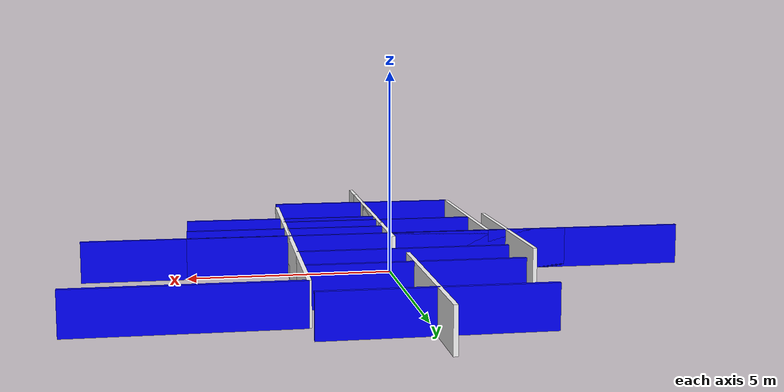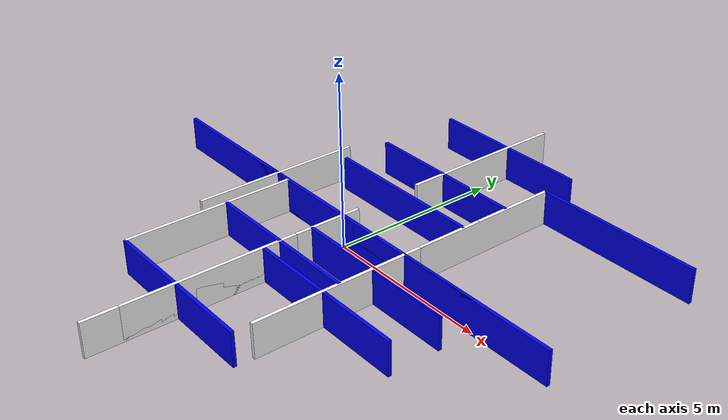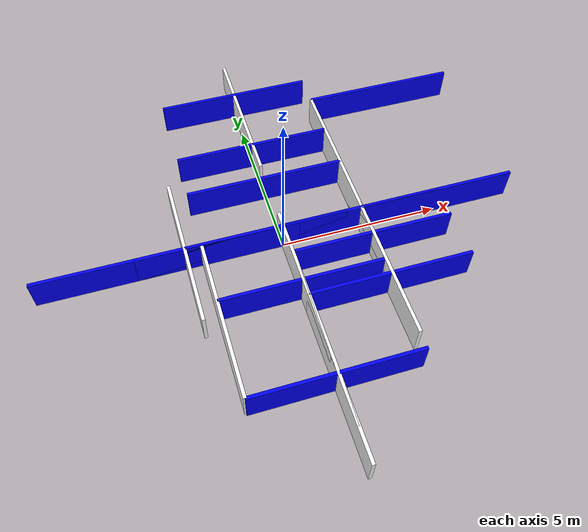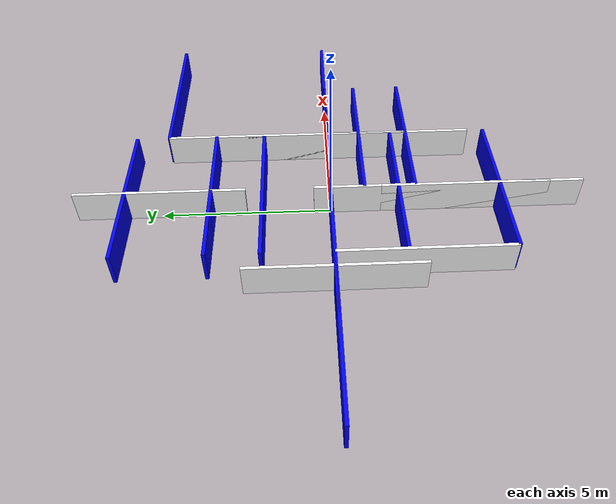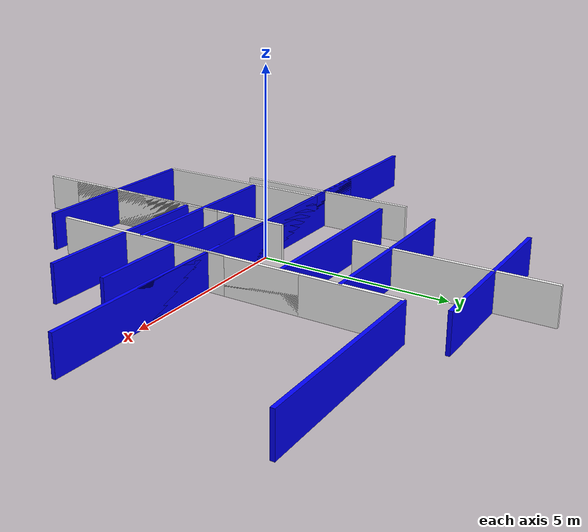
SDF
<?xml version="1.0" ?>
<sdf version="1.8">
    <model name='maze'>
      <include>
        <uri>model://wall_2x5m</uri>
        <pose>2.5 -1 0 0 0 0</pose>
        <name>a1</name>
      </include>

      <include>
        <uri>model://ar_tags/tag_01</uri>
        <pose relative_to="a1">2.5 2.5 0 0 0 0</pose>
        <name>tag_01</name>
      </include>

      <include>
        <uri>model://wall_2x5m_</uri>
        <pose relative_to="a1">2.5 2.5 0 0 0 0</pose>
        <name>a2</name>
      </include>

      <include>
        <uri>model://wall_2x5m_</uri>
        <pose relative_to="a1">-2.5 -2.5 0 0 0 0</pose>
        <name>a3</name>
      </include>

      <include>
        <uri>model://wall_2x5m_</uri>
        <pose relative_to="a2">0 -4 0 0 0 0</pose>
        <name>a4</name>
      </include>

      <include>
        <uri>model://wall_2x5m</uri>
        <pose relative_to="a1">0 -5 0 0 0 0</pose>
        <name>a5</name>
      </include>

      <include>
        <uri>model://wall_2x5m</uri>
        <pose relative_to="a5">2.5 0 0 0 0 0</pose>
        <name>a6</name>
      </include>

      <include>
        <uri>model://wall_2x5m</uri>
        <pose relative_to="a6">0 -2 0 0 0 0</pose>
        <name>a7</name>
      </include>

      <include>
        <uri>model://wall_2x5m</uri>
        <pose relative_to="a7">-5 0 0 0 0 0</pose>
        <name>a8</name>
      </include>

      <include>
        <uri>model://wall_2x5m_</uri>
        <pose relative_to="a3">0 -2 0 0 0 0</pose>
        <name>a9</name>
      </include>

      <include>
        <uri>model://wall_2x5m</uri>
        <pose relative_to="a1">0 6 0 0 0 0</pose>
        <name>b1</name>
      </include>

      <include>
        <uri>model://wall_2x5m_</uri>
        <pose relative_to="b1">2.5 2.5 0 0 0 0</pose>
        <name>b2</name>
      </include>

      <include>
        <uri>model://wall_2x5m_</uri>
        <pose relative_to="b1">-2.5 -2.5 0 0 0 0</pose>
        <name>b3</name>
      </include>

      <include>
        <uri>model://wall_2x5m_</uri>
        <pose relative_to="b2">2.5 -2 0 0 0 0</pose>
        <name>b4</name>
      </include>

      <include>
        <uri>model://wall_2x5m_</uri>
        <pose relative_to="b4">0 -5 0 0 0 0</pose>
        <name>b5</name>
      </include>

      <include>
        <uri>model://wall_2x5m_</uri>
        <pose relative_to="b5">0 -5 0 0 0 0</pose>
        <name>b6</name>
      </include>

      <include>
        <name>c0</name>
        <pose relative_to="b1">5 5 0 0 0 0</pose>
        <uri>model://wall_2x5m</uri>
      </include>

      <include>
        <name>c1</name>
        <pose relative_to="c0">-5 0 0 0 0 0</pose>
        <uri>model://wall_2x5m</uri>
      </include>

      <include>
        <name>c2</name>
        <pose relative_to="c1">-5 0 0 0 0 0</pose>
        <uri>model://wall_2x5m</uri>
      </include>

      <include>
        <name>c3</name>
        <pose relative_to="c2">-5 0 0 0 0 0</pose>
        <uri>model://wall_2x5m</uri>
      </include>

      <include>
        <name>c4</name>
        <pose relative_to="c3">-2.5 -2.5 0 0 0 0</pose>
        <uri>model://wall_2x5m_</uri>
      </include>

      <include>
        <name>c5</name>
        <pose relative_to="c4">0 -5 0 0 0 0</pose>
        <uri>model://wall_2x5m_</uri>
      </include>

      <include>
        <name>c6</name>
        <pose relative_to="c5">0 -5 0 0 0 0</pose>
        <uri>model://wall_2x5m_</uri>
      </include>

      <include>
        <name>c7</name>
        <pose relative_to="c6">0 -5 0 0 0 0</pose>
        <uri>model://wall_2x5m_</uri>
      </include>

      <include>
        <name>c8</name>
        <pose relative_to="c7">2.5 -2.5 0 0 0 0</pose>
        <uri>model://wall_2x5m</uri>
      </include>

      <include>
        <name>c9</name>
        <pose relative_to="c8">5 0 0 0 0 0</pose>
        <uri>model://wall_2x5m</uri>
      </include>

      <include>
        <name>c10</name>
        <pose relative_to="c9">5 0 0 0 0 0</pose>
        <uri>model://wall_2x5m</uri>
      </include>

      <include>
        <name>c11</name>
        <pose relative_to="c10">5 0 0 0 0 0</pose>
        <uri>model://wall_2x5m</uri>
      </include>

      <include>
        <name>c12</name>
        <pose relative_to="c11">2.5 2.5 0 0 0 0</pose>
        <uri>model://wall_2x5m_</uri>
      </include>

      <include>
        <name>c13</name>
        <pose relative_to="c12">0 5 0 0 0 0</pose>
        <uri>model://wall_2x5m_</uri>
      </include>

      <include>
        <name>c14</name>
        <pose relative_to="c13">0 5 0 0 0 0</pose>
        <uri>model://wall_2x5m_</uri>
      </include>

      <include>
        <name>c15</name>
        <pose relative_to="c14">0 5 0 0 0 0</pose>
        <uri>model://wall_2x5m_</uri>
      </include>

      <include>
        <name>d1</name>
        <pose relative_to="b1">-5 0 0 0 0 0</pose>
        <uri>model://wall_2x5m</uri>
      </include>

      <include>
        <name>d2</name>
        <pose relative_to="c8">0 2 0 0 0 0</pose>
        <uri>model://wall_2x5m</uri>
      </include>

      <include>
        <name>d3</name>
        <pose relative_to="d2">0 3.5 0 0 0 0</pose>
        <uri>model://wall_2x5m</uri>
      </include>

      <include>
        <name>d4</name>
        <pose relative_to="d3">0 3.5 0 0 0 0</pose>
        <uri>model://wall_2x5m</uri>
      </include>

      <include>
        <name>d5</name>
        <pose relative_to="d3">2.5 0 0 0 0 0</pose>
        <uri>model://wall_2x5m_</uri>
      </include>

      <include>
        <name>d6</name>
        <pose relative_to="a8">-0.5 0 0 0 0 0</pose>
        <uri>model://wall_2x5m</uri>
      </include>

      <include>
        <name>d7</name>
        <pose relative_to="a9">-3 0 0 0 0 0</pose>
        <uri>model://wall_2x5m_</uri>
      </include>

      <include>
        <name>d8</name>
        <pose relative_to="a3">-3 0 0 0 0 0</pose>
        <uri>model://wall_2x5m_</uri>
      </include>

      <include>
        <name>d9</name>
        <pose relative_to="a1">-2 0 0 0 0 0</pose>
        <uri>model://wall_2x5m</uri>
        <size>0.1 3.0 2</size>
      </include>
    </model>
</sdf>

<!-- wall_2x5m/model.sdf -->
<sdf version='1.8'>
  <model name='room_wall_2x5m'>
    <link name="link">
      <pose>0 0 0.5 0 0 1.570796326795</pose>
      <visual name="visual">
        <geometry>
          <box>
            <size>0.1 5.0 1</size>
          </box>
        </geometry>
        <material>
          <ambient>0.0 0.0 1.0 1</ambient>
          <diffuse>0.0 0.0 1.0 1</diffuse>
          <specular>0.0 0.0 1.0 1</specular>
        </material>
      </visual>
      <collision name ="collision">
        <geometry>
           <box>
            <size>0.1 5.0 1</size>
          </box>
        </geometry>
      </collision>
    </link>
    <static>1</static>
    <allow_auto_disable>1</allow_auto_disable>
  </model>
</sdf>

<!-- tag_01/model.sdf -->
<sdf version="1.6">
  <model name="tag_01">
    <static>true</static>
    <link name="link">
      <visual name="visual">
        <geometry>
          <mesh>
            <uri>tag.dae</uri>
          <scale>0.5 0.5 0.5</scale></mesh>
        </geometry>
      </visual>
    </link>
  </model>
</sdf>

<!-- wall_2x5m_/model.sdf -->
<sdf version='1.8'>
  <model name='room_wall_2x5m_'>
    <link name="link">
      <pose>0 0 0.5 0 0 0</pose>
      <visual name="visual">
        <geometry>
          <box>
            <size>0.1 5.0 1</size>
          </box>
        </geometry>
        <material>
          <ambient>1 1 1 1</ambient>
          <diffuse>1 1 1 1</diffuse>
          <specular>1 1 1 1</specular>
        </material>
      </visual>
      <collision name ="collision">
        <geometry>
           <box>
            <size>0.1 5.0 1</size>
          </box>
        </geometry>
      </collision>
    </link>
    <static>1</static>
    <allow_auto_disable>1</allow_auto_disable>
  </model>
</sdf>
